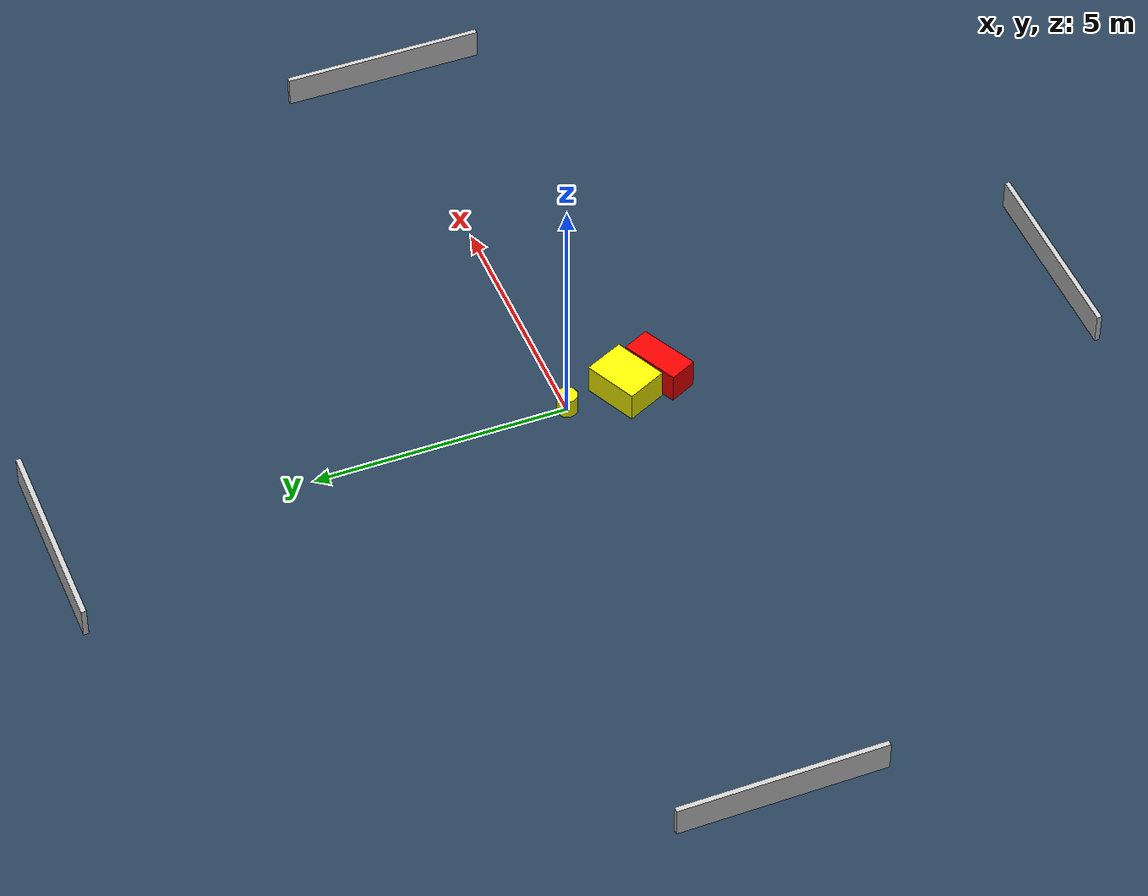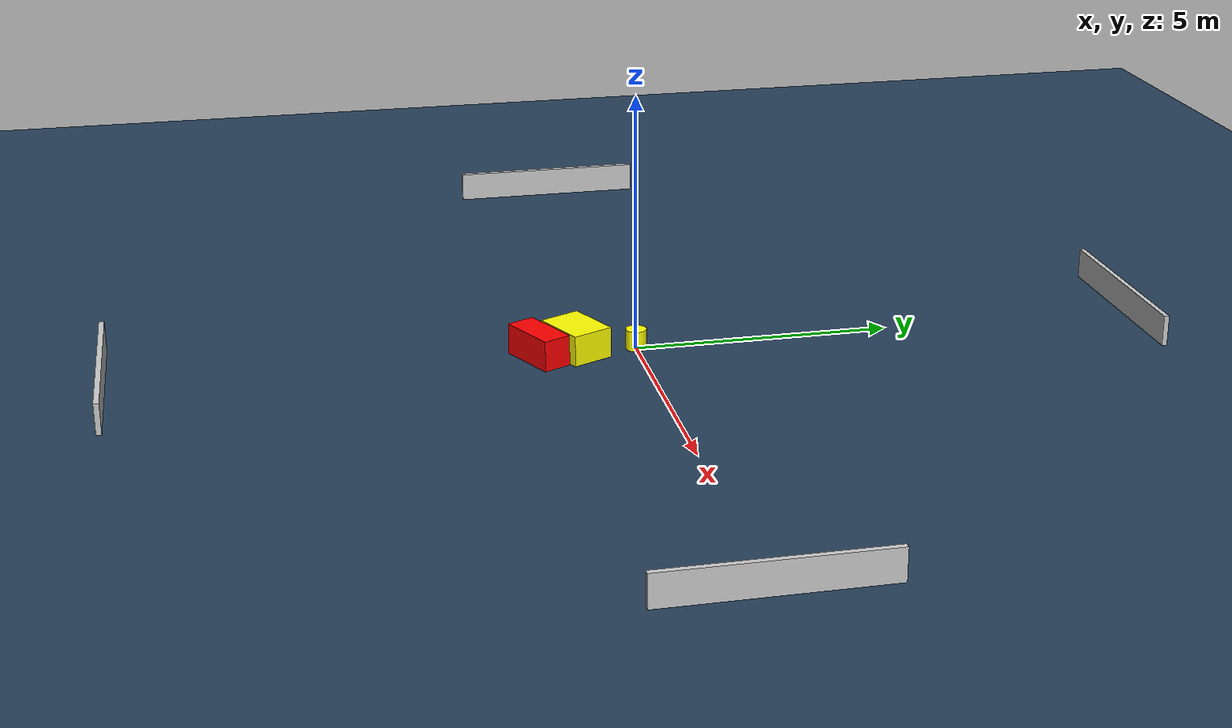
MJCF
<?xml version="1.0" ?>
<mujoco model="generated_environment">
  <option timestep="0.01" integrator="RK4" cone="elliptic"/>
  <default>
    <geom density="1"/>
  </default>
  <asset>
    <texture builtin="gradient" height="3072" name="skybox" rgb1="0.3 0.5 0.7" rgb2="0 0 0" type="skybox" width="512"/>
    <texture builtin="checker" height="300" name="groundplane" rgb1="0.2 0.3 0.4" rgb2="0.1 0.2 0.3" type="2d" width="300"/>
    <material name="groundplane" reflectance="0.2" texrepeat="5 5" texture="groundplane"/>
  </asset>
  <worldbody>
    <light dir="0 0 -1" directional="true" pos="0 0 1.5"/>
    <geom condim="3" friction="0.5 0.005 0.001" material="groundplane" name="floor" pos="0 0 0" size="0 0 0.05" type="plane"/>
    <body name="walls">
      <geom name="wall_1" condim="4" pos="-10.0 0.0 0.3" rgba="0.800000011920929 0.800000011920929 0.800000011920929 1.0" size="0.05 2.0 0.3" type="box"/>
      <geom name="wall_2" condim="4" pos="10.0 0.0 0.3" rgba="0.800000011920929 0.800000011920929 0.800000011920929 1.0" size="0.05 2.0 0.3" type="box"/>
      <geom name="wall_3" condim="4" pos="0.0 -10.0 0.3" rgba="0.800000011920929 0.800000011920929 0.800000011920929 1.0" size="2.0 0.05 0.3" type="box"/>
      <geom name="wall_4" condim="4" pos="0.0 10.0 0.3" rgba="0.800000011920929 0.800000011920929 0.800000011920929 1.0" size="2.0 0.05 0.3" type="box"/>
    </body>
    <body name="robot">
      <joint name="joint_x" type="slide" pos="0 0 0" axis="1 0 0"/>
      <joint name="joint_y" type="slide" pos="0 0 0" axis="0 1 0"/>
      <geom name="robot" type="cylinder" pos="0.0 0.0 0.2" size="0.2 0.2 0.0" mass="5.0" friction="1.0 0.005 0.0001" condim="4" rgba="1.0 1.0 0.0 1.0"/>
    </body>
    <body name="obstacle_1_movable">
      <geom name="obstacle_1_movable" condim="4" pos="0.006169420887341887 -1.1696872332286645 0.3" euler="0 0 205.3048187070704" friction="0.0 0.005 0.001" rgba="1.0 1.0 0.0 1.0" size="0.5515195665428588 0.42053113300073974 0.3" type="box" mass="0.1"/>
      <joint type="free"/>
    </body>
    <body name="obstacle_2_static">
      <geom name="obstacle_2_static" condim="4" pos="0.15440070200344597 -1.9166978947637316 0.3" euler="0 0 26.010015947162163" friction="0.0 0.005 0.001" rgba="1.0 0.0 0.0 1.0" size="0.5992684791390906 0.2824665327725116 0.3" type="box"/>
    </body>
  </worldbody>
  <actuator>
    <motor name="actuator_x" joint="joint_x" gear="1" ctrlrange="-1 1"/>
    <motor name="actuator_y" joint="joint_y" gear="1" ctrlrange="-1 1"/>
  </actuator>
</mujoco>
